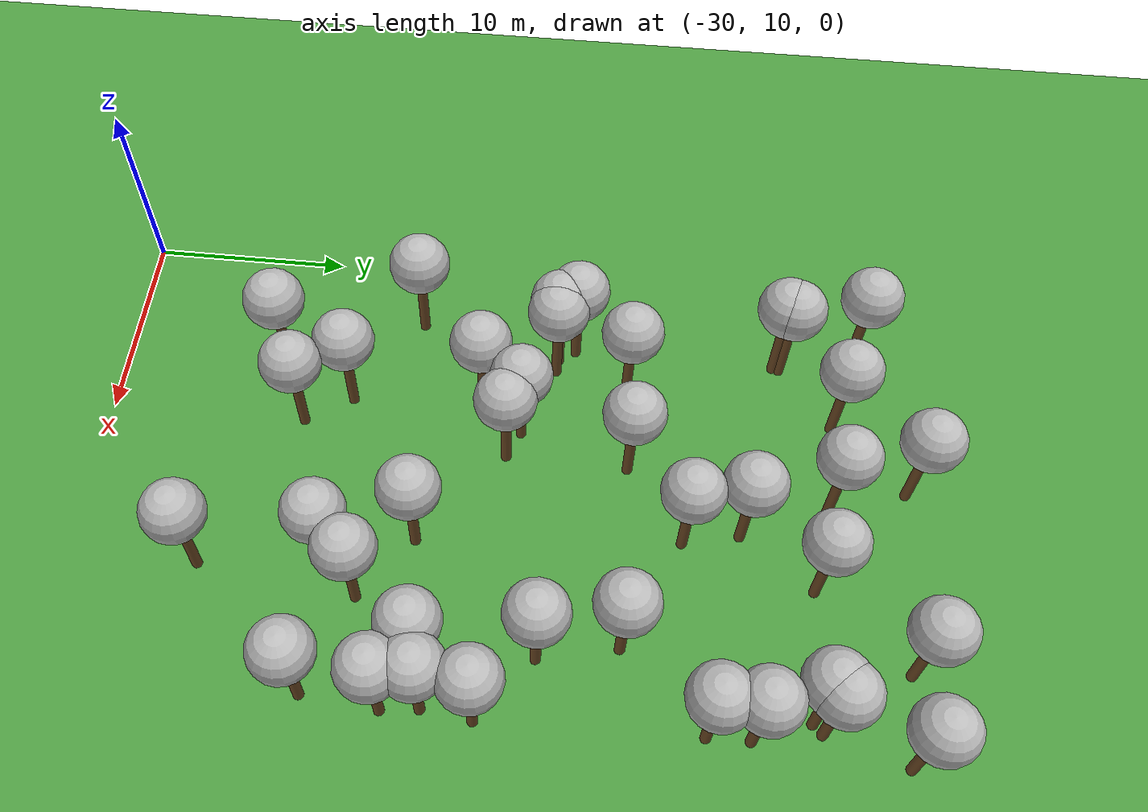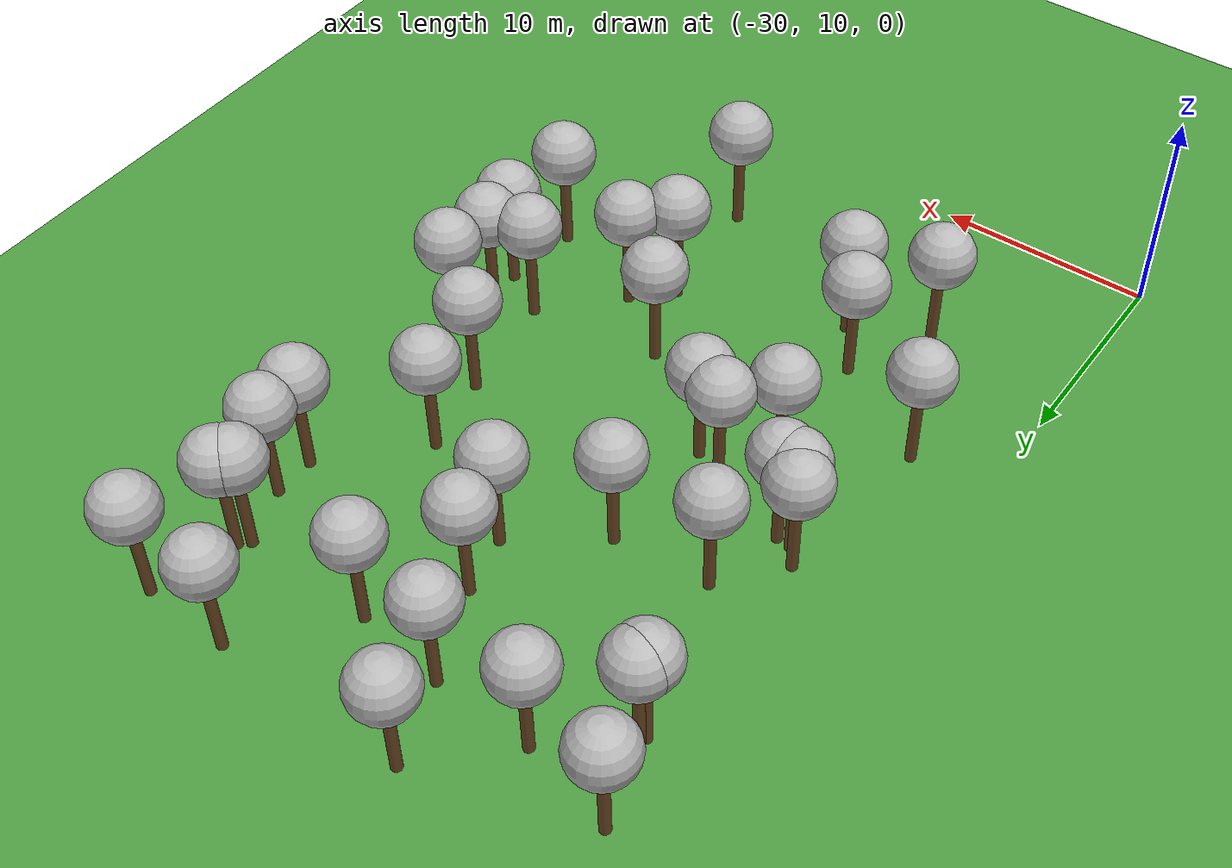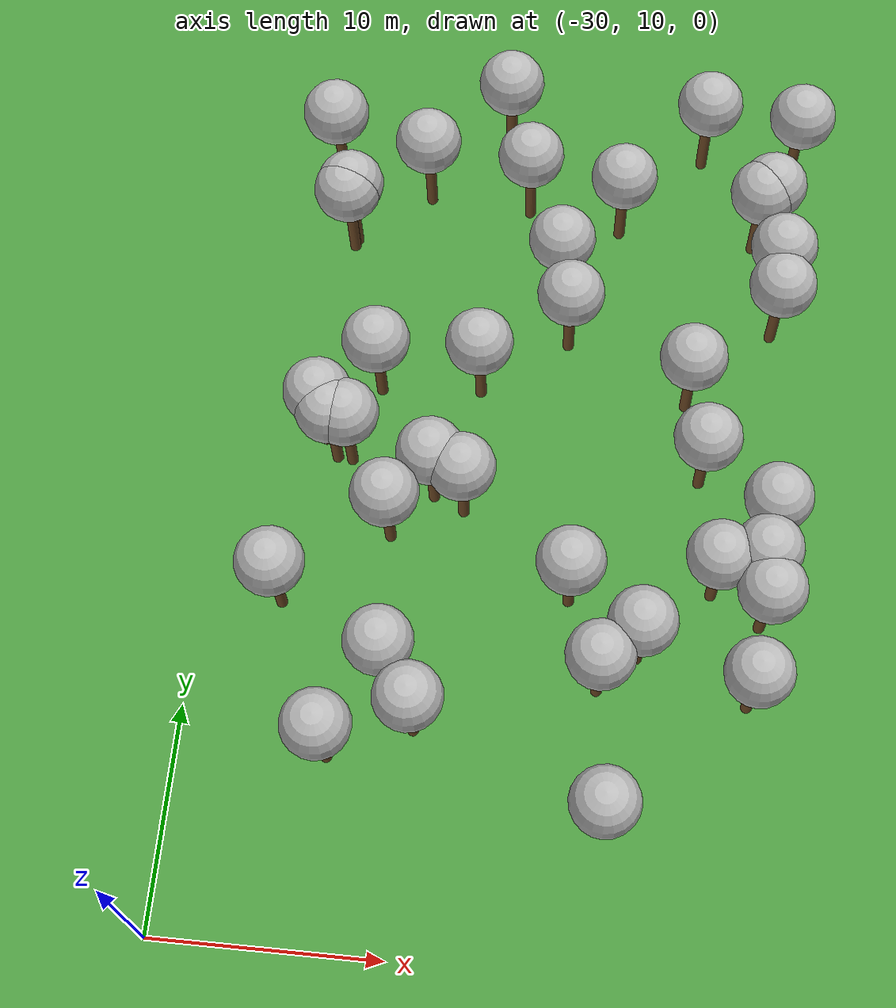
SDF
<sdf version="1.5">
 <world name="default">
  <model name="tree_simple492">
   <static>1</static>
   <link name="link">
    <pose>0 0 0.1 0 -0 0</pose>
    <collision name="collision_trunk">
     <pose>0 0 2 0 -0 0</pose>
     <geometry><cylinder><radius>0.25</radius><length>4</length></cylinder></geometry>
    </collision>
    <collision name="collision_treetop">
     <pose>0 0 5.2 0 -0 0</pose>
     <geometry><sphere><radius>1.5</radius></sphere></geometry>
    </collision>
    <visual name="trunk">
     <pose>0 0 2 0 -0 0</pose>
     <geometry><cylinder><radius>0.25</radius><length>4</length></cylinder></geometry>
     <material>
      <script>
       <uri>model://tree_simple/scripts</uri>
       <uri>model://tree_simple/materials/textures</uri>
       <name>TreeSimple/Trunk</name>
      </script>
     </material>
    </visual>
    <visual name="treetop">
     <pose>0 0 5.2 0 -0 0</pose>
     <geometry><sphere><radius>1.5</radius></sphere></geometry>
     <material>
      <script>
       <uri>model://tree_simple/scripts</uri>
       <uri>model://tree_simple/materials/textures</uri>
       <name>TreeSimple/Treetop</name>
      </script>
     </material>
    </visual>
   </link>
   <pose>-7.60604313382 27.1336498888 0 0 -0 0</pose>
  </model>
  <model name="tree_simple483">
   <static>1</static>
   <link name="link">
    <pose>0 0 0.1 0 -0 0</pose>
    <collision name="collision_trunk">
     <pose>0 0 2 0 -0 0</pose>
     <geometry><cylinder><radius>0.25</radius><length>4</length></cylinder></geometry>
    </collision>
    <collision name="collision_treetop">
     <pose>0 0 5.2 0 -0 0</pose>
     <geometry><sphere><radius>1.5</radius></sphere></geometry>
    </collision>
    <visual name="trunk">
     <pose>0 0 2 0 -0 0</pose>
     <geometry><cylinder><radius>0.25</radius><length>4</length></cylinder></geometry>
     <material>
      <script>
       <uri>model://tree_simple/scripts</uri>
       <uri>model://tree_simple/materials/textures</uri>
       <name>TreeSimple/Trunk</name>
      </script>
     </material>
    </visual>
    <visual name="treetop">
     <pose>0 0 5.2 0 -0 0</pose>
     <geometry><sphere><radius>1.5</radius></sphere></geometry>
     <material>
      <script>
       <uri>model://tree_simple/scripts</uri>
       <uri>model://tree_simple/materials/textures</uri>
       <name>TreeSimple/Treetop</name>
      </script>
     </material>
    </visual>
   </link>
   <pose>-6.65162129766 44.7613363002 0 0 -0 0</pose>
  </model>
  <model name="tree_simple479">
   <static>1</static>
   <link name="link">
    <pose>0 0 0.1 0 -0 0</pose>
    <collision name="collision_trunk">
     <pose>0 0 2 0 -0 0</pose>
     <geometry><cylinder><radius>0.25</radius><length>4</length></cylinder></geometry>
    </collision>
    <collision name="collision_treetop">
     <pose>0 0 5.2 0 -0 0</pose>
     <geometry><sphere><radius>1.5</radius></sphere></geometry>
    </collision>
    <visual name="trunk">
     <pose>0 0 2 0 -0 0</pose>
     <geometry><cylinder><radius>0.25</radius><length>4</length></cylinder></geometry>
     <material>
      <script>
       <uri>model://tree_simple/scripts</uri>
       <uri>model://tree_simple/materials/textures</uri>
       <name>TreeSimple/Trunk</name>
      </script>
     </material>
    </visual>
    <visual name="treetop">
     <pose>0 0 5.2 0 -0 0</pose>
     <geometry><sphere><radius>1.5</radius></sphere></geometry>
     <material>
      <script>
       <uri>model://tree_simple/scripts</uri>
       <uri>model://tree_simple/materials/textures</uri>
       <name>TreeSimple/Treetop</name>
      </script>
     </material>
    </visual>
   </link>
   <pose>-12.2778199556 22.3020251283 0 0 -0 0</pose>
  </model>
  <model name="tree_simple466">
   <static>1</static>
   <link name="link">
    <pose>0 0 0.1 0 -0 0</pose>
    <collision name="collision_trunk">
     <pose>0 0 2 0 -0 0</pose>
     <geometry><cylinder><radius>0.25</radius><length>4</length></cylinder></geometry>
    </collision>
    <collision name="collision_treetop">
     <pose>0 0 5.2 0 -0 0</pose>
     <geometry><sphere><radius>1.5</radius></sphere></geometry>
    </collision>
    <visual name="trunk">
     <pose>0 0 2 0 -0 0</pose>
     <geometry><cylinder><radius>0.25</radius><length>4</length></cylinder></geometry>
     <material>
      <script>
       <uri>model://tree_simple/scripts</uri>
       <uri>model://tree_simple/materials/textures</uri>
       <name>TreeSimple/Trunk</name>
      </script>
     </material>
    </visual>
    <visual name="treetop">
     <pose>0 0 5.2 0 -0 0</pose>
     <geometry><sphere><radius>1.5</radius></sphere></geometry>
     <material>
      <script>
       <uri>model://tree_simple/scripts</uri>
       <uri>model://tree_simple/materials/textures</uri>
       <name>TreeSimple/Treetop</name>
      </script>
     </material>
    </visual>
   </link>
   <pose>-5.77986608036 22.173723886 0 0 -0 0</pose>
  </model>
  <model name="tree_simple446">
   <static>1</static>
   <link name="link">
    <pose>0 0 0.1 0 -0 0</pose>
    <collision name="collision_trunk">
     <pose>0 0 2 0 -0 0</pose>
     <geometry><cylinder><radius>0.25</radius><length>4</length></cylinder></geometry>
    </collision>
    <collision name="collision_treetop">
     <pose>0 0 5.2 0 -0 0</pose>
     <geometry><sphere><radius>1.5</radius></sphere></geometry>
    </collision>
    <visual name="trunk">
     <pose>0 0 2 0 -0 0</pose>
     <geometry><cylinder><radius>0.25</radius><length>4</length></cylinder></geometry>
     <material>
      <script>
       <uri>model://tree_simple/scripts</uri>
       <uri>model://tree_simple/materials/textures</uri>
       <name>TreeSimple/Trunk</name>
      </script>
     </material>
    </visual>
    <visual name="treetop">
     <pose>0 0 5.2 0 -0 0</pose>
     <geometry><sphere><radius>1.5</radius></sphere></geometry>
     <material>
      <script>
       <uri>model://tree_simple/scripts</uri>
       <uri>model://tree_simple/materials/textures</uri>
       <name>TreeSimple/Treetop</name>
      </script>
     </material>
    </visual>
   </link>
   <pose>-14.8873591434 38.8088683427 0 0 -0 0</pose>
  </model>
  <model name="tree_simple441">
   <static>1</static>
   <link name="link">
    <pose>0 0 0.1 0 -0 0</pose>
    <collision name="collision_trunk">
     <pose>0 0 2 0 -0 0</pose>
     <geometry><cylinder><radius>0.25</radius><length>4</length></cylinder></geometry>
    </collision>
    <collision name="collision_treetop">
     <pose>0 0 5.2 0 -0 0</pose>
     <geometry><sphere><radius>1.5</radius></sphere></geometry>
    </collision>
    <visual name="trunk">
     <pose>0 0 2 0 -0 0</pose>
     <geometry><cylinder><radius>0.25</radius><length>4</length></cylinder></geometry>
     <material>
      <script>
       <uri>model://tree_simple/scripts</uri>
       <uri>model://tree_simple/materials/textures</uri>
       <name>TreeSimple/Trunk</name>
      </script>
     </material>
    </visual>
    <visual name="treetop">
     <pose>0 0 5.2 0 -0 0</pose>
     <geometry><sphere><radius>1.5</radius></sphere></geometry>
     <material>
      <script>
       <uri>model://tree_simple/scripts</uri>
       <uri>model://tree_simple/materials/textures</uri>
       <name>TreeSimple/Treetop</name>
      </script>
     </material>
    </visual>
   </link>
   <pose>-25.4258718868 33.0017159702 0 0 -0 0</pose>
  </model>
  <model name="tree_simple436">
   <static>1</static>
   <link name="link">
    <pose>0 0 0.1 0 -0 0</pose>
    <collision name="collision_trunk">
     <pose>0 0 2 0 -0 0</pose>
     <geometry><cylinder><radius>0.25</radius><length>4</length></cylinder></geometry>
    </collision>
    <collision name="collision_treetop">
     <pose>0 0 5.2 0 -0 0</pose>
     <geometry><sphere><radius>1.5</radius></sphere></geometry>
    </collision>
    <visual name="trunk">
     <pose>0 0 2 0 -0 0</pose>
     <geometry><cylinder><radius>0.25</radius><length>4</length></cylinder></geometry>
     <material>
      <script>
       <uri>model://tree_simple/scripts</uri>
       <uri>model://tree_simple/materials/textures</uri>
       <name>TreeSimple/Trunk</name>
      </script>
     </material>
    </visual>
    <visual name="treetop">
     <pose>0 0 5.2 0 -0 0</pose>
     <geometry><sphere><radius>1.5</radius></sphere></geometry>
     <material>
      <script>
       <uri>model://tree_simple/scripts</uri>
       <uri>model://tree_simple/materials/textures</uri>
       <name>TreeSimple/Treetop</name>
      </script>
     </material>
    </visual>
   </link>
   <pose>-12.9773602363 44.9895309953 0 0 -0 0</pose>
  </model>
  <model name="tree_simple425">
   <static>1</static>
   <link name="link">
    <pose>0 0 0.1 0 -0 0</pose>
    <collision name="collision_trunk">
     <pose>0 0 2 0 -0 0</pose>
     <geometry><cylinder><radius>0.25</radius><length>4</length></cylinder></geometry>
    </collision>
    <collision name="collision_treetop">
     <pose>0 0 5.2 0 -0 0</pose>
     <geometry><sphere><radius>1.5</radius></sphere></geometry>
    </collision>
    <visual name="trunk">
     <pose>0 0 2 0 -0 0</pose>
     <geometry><cylinder><radius>0.25</radius><length>4</length></cylinder></geometry>
     <material>
      <script>
       <uri>model://tree_simple/scripts</uri>
       <uri>model://tree_simple/materials/textures</uri>
       <name>TreeSimple/Trunk</name>
      </script>
     </material>
    </visual>
    <visual name="treetop">
     <pose>0 0 5.2 0 -0 0</pose>
     <geometry><sphere><radius>1.5</radius></sphere></geometry>
     <material>
      <script>
       <uri>model://tree_simple/scripts</uri>
       <uri>model://tree_simple/materials/textures</uri>
       <name>TreeSimple/Treetop</name>
      </script>
     </material>
    </visual>
   </link>
   <pose>-9.294152574 36.1907172759 0 0 -0 0</pose>
  </model>
  <model name="tree_simple409">
   <static>1</static>
   <link name="link">
    <pose>0 0 0.1 0 -0 0</pose>
    <collision name="collision_trunk">
     <pose>0 0 2 0 -0 0</pose>
     <geometry><cylinder><radius>0.25</radius><length>4</length></cylinder></geometry>
    </collision>
    <collision name="collision_treetop">
     <pose>0 0 5.2 0 -0 0</pose>
     <geometry><sphere><radius>1.5</radius></sphere></geometry>
    </collision>
    <visual name="trunk">
     <pose>0 0 2 0 -0 0</pose>
     <geometry><cylinder><radius>0.25</radius><length>4</length></cylinder></geometry>
     <material>
      <script>
       <uri>model://tree_simple/scripts</uri>
       <uri>model://tree_simple/materials/textures</uri>
       <name>TreeSimple/Trunk</name>
      </script>
     </material>
    </visual>
    <visual name="treetop">
     <pose>0 0 5.2 0 -0 0</pose>
     <geometry><sphere><radius>1.5</radius></sphere></geometry>
     <material>
      <script>
       <uri>model://tree_simple/scripts</uri>
       <uri>model://tree_simple/materials/textures</uri>
       <name>TreeSimple/Treetop</name>
      </script>
     </material>
    </visual>
   </link>
   <pose>-23.2045481925 35.7189479207 0 0 -0 0</pose>
  </model>
  <model name="tree_simple398">
   <static>1</static>
   <link name="link">
    <pose>0 0 0.1 0 -0 0</pose>
    <collision name="collision_trunk">
     <pose>0 0 2 0 -0 0</pose>
     <geometry><cylinder><radius>0.25</radius><length>4</length></cylinder></geometry>
    </collision>
    <collision name="collision_treetop">
     <pose>0 0 5.2 0 -0 0</pose>
     <geometry><sphere><radius>1.5</radius></sphere></geometry>
    </collision>
    <visual name="trunk">
     <pose>0 0 2 0 -0 0</pose>
     <geometry><cylinder><radius>0.25</radius><length>4</length></cylinder></geometry>
     <material>
      <script>
       <uri>model://tree_simple/scripts</uri>
       <uri>model://tree_simple/materials/textures</uri>
       <name>TreeSimple/Trunk</name>
      </script>
     </material>
    </visual>
    <visual name="treetop">
     <pose>0 0 5.2 0 -0 0</pose>
     <geometry><sphere><radius>1.5</radius></sphere></geometry>
     <material>
      <script>
       <uri>model://tree_simple/scripts</uri>
       <uri>model://tree_simple/materials/textures</uri>
       <name>TreeSimple/Treetop</name>
      </script>
     </material>
    </visual>
   </link>
   <pose>-5.63129043723 27.5985943182 0 0 -0 0</pose>
  </model>
  <model name="tree_simple359">
   <static>1</static>
   <link name="link">
    <pose>0 0 0.1 0 -0 0</pose>
    <collision name="collision_trunk">
     <pose>0 0 2 0 -0 0</pose>
     <geometry><cylinder><radius>0.25</radius><length>4</length></cylinder></geometry>
    </collision>
    <collision name="collision_treetop">
     <pose>0 0 5.2 0 -0 0</pose>
     <geometry><sphere><radius>1.5</radius></sphere></geometry>
    </collision>
    <visual name="trunk">
     <pose>0 0 2 0 -0 0</pose>
     <geometry><cylinder><radius>0.25</radius><length>4</length></cylinder></geometry>
     <material>
      <script>
       <uri>model://tree_simple/scripts</uri>
       <uri>model://tree_simple/materials/textures</uri>
       <name>TreeSimple/Trunk</name>
      </script>
     </material>
    </visual>
    <visual name="treetop">
     <pose>0 0 5.2 0 -0 0</pose>
     <geometry><sphere><radius>1.5</radius></sphere></geometry>
     <material>
      <script>
       <uri>model://tree_simple/scripts</uri>
       <uri>model://tree_simple/materials/textures</uri>
       <name>TreeSimple/Treetop</name>
      </script>
     </material>
    </visual>
   </link>
   <pose>-20.2372130322 30.6626507403 0 0 -0 0</pose>
  </model>
  <model name="tree_simple353">
   <static>1</static>
   <link name="link">
    <pose>0 0 0.1 0 -0 0</pose>
    <collision name="collision_trunk">
     <pose>0 0 2 0 -0 0</pose>
     <geometry><cylinder><radius>0.25</radius><length>4</length></cylinder></geometry>
    </collision>
    <collision name="collision_treetop">
     <pose>0 0 5.2 0 -0 0</pose>
     <geometry><sphere><radius>1.5</radius></sphere></geometry>
    </collision>
    <visual name="trunk">
     <pose>0 0 2 0 -0 0</pose>
     <geometry><cylinder><radius>0.25</radius><length>4</length></cylinder></geometry>
     <material>
      <script>
       <uri>model://tree_simple/scripts</uri>
       <uri>model://tree_simple/materials/textures</uri>
       <name>TreeSimple/Trunk</name>
      </script>
     </material>
    </visual>
    <visual name="treetop">
     <pose>0 0 5.2 0 -0 0</pose>
     <geometry><sphere><radius>1.5</radius></sphere></geometry>
     <material>
      <script>
       <uri>model://tree_simple/scripts</uri>
       <uri>model://tree_simple/materials/textures</uri>
       <name>TreeSimple/Treetop</name>
      </script>
     </material>
    </visual>
   </link>
   <pose>-8.45318639894 32.4449291469 0 0 -0 0</pose>
  </model>
  <model name="tree_simple343">
   <static>1</static>
   <link name="link">
    <pose>0 0 0.1 0 -0 0</pose>
    <collision name="collision_trunk">
     <pose>0 0 2 0 -0 0</pose>
     <geometry><cylinder><radius>0.25</radius><length>4</length></cylinder></geometry>
    </collision>
    <collision name="collision_treetop">
     <pose>0 0 5.2 0 -0 0</pose>
     <geometry><sphere><radius>1.5</radius></sphere></geometry>
    </collision>
    <visual name="trunk">
     <pose>0 0 2 0 -0 0</pose>
     <geometry><cylinder><radius>0.25</radius><length>4</length></cylinder></geometry>
     <material>
      <script>
       <uri>model://tree_simple/scripts</uri>
       <uri>model://tree_simple/materials/textures</uri>
       <name>TreeSimple/Trunk</name>
      </script>
     </material>
    </visual>
    <visual name="treetop">
     <pose>0 0 5.2 0 -0 0</pose>
     <geometry><sphere><radius>1.5</radius></sphere></geometry>
     <material>
      <script>
       <uri>model://tree_simple/scripts</uri>
       <uri>model://tree_simple/materials/textures</uri>
       <name>TreeSimple/Treetop</name>
      </script>
     </material>
    </visual>
   </link>
   <pose>-17.2958932822 45.7138384605 0 0 -0 0</pose>
  </model>
  <model name="tree_simple342">
   <static>1</static>
   <link name="link">
    <pose>0 0 0.1 0 -0 0</pose>
    <collision name="collision_trunk">
     <pose>0 0 2 0 -0 0</pose>
     <geometry><cylinder><radius>0.25</radius><length>4</length></cylinder></geometry>
    </collision>
    <collision name="collision_treetop">
     <pose>0 0 5.2 0 -0 0</pose>
     <geometry><sphere><radius>1.5</radius></sphere></geometry>
    </collision>
    <visual name="trunk">
     <pose>0 0 2 0 -0 0</pose>
     <geometry><cylinder><radius>0.25</radius><length>4</length></cylinder></geometry>
     <material>
      <script>
       <uri>model://tree_simple/scripts</uri>
       <uri>model://tree_simple/materials/textures</uri>
       <name>TreeSimple/Trunk</name>
      </script>
     </material>
    </visual>
    <visual name="treetop">
     <pose>0 0 5.2 0 -0 0</pose>
     <geometry><sphere><radius>1.5</radius></sphere></geometry>
     <material>
      <script>
       <uri>model://tree_simple/scripts</uri>
       <uri>model://tree_simple/materials/textures</uri>
       <name>TreeSimple/Treetop</name>
      </script>
     </material>
    </visual>
   </link>
   <pose>-22.0369501139 46.0033918911 0 0 -0 0</pose>
  </model>
  <model name="tree_simple310">
   <static>1</static>
   <link name="link">
    <pose>0 0 0.1 0 -0 0</pose>
    <collision name="collision_trunk">
     <pose>0 0 2 0 -0 0</pose>
     <geometry><cylinder><radius>0.25</radius><length>4</length></cylinder></geometry>
    </collision>
    <collision name="collision_treetop">
     <pose>0 0 5.2 0 -0 0</pose>
     <geometry><sphere><radius>1.5</radius></sphere></geometry>
    </collision>
    <visual name="trunk">
     <pose>0 0 2 0 -0 0</pose>
     <geometry><cylinder><radius>0.25</radius><length>4</length></cylinder></geometry>
     <material>
      <script>
       <uri>model://tree_simple/scripts</uri>
       <uri>model://tree_simple/materials/textures</uri>
       <name>TreeSimple/Trunk</name>
      </script>
     </material>
    </visual>
    <visual name="treetop">
     <pose>0 0 5.2 0 -0 0</pose>
     <geometry><sphere><radius>1.5</radius></sphere></geometry>
     <material>
      <script>
       <uri>model://tree_simple/scripts</uri>
       <uri>model://tree_simple/materials/textures</uri>
       <name>TreeSimple/Treetop</name>
      </script>
     </material>
    </visual>
   </link>
   <pose>-24.1249967054 32.1060106323 0 0 -0 0</pose>
  </model>
  <model name="tree_simple307">
   <static>1</static>
   <link name="link">
    <pose>0 0 0.1 0 -0 0</pose>
    <collision name="collision_trunk">
     <pose>0 0 2 0 -0 0</pose>
     <geometry><cylinder><radius>0.25</radius><length>4</length></cylinder></geometry>
    </collision>
    <collision name="collision_treetop">
     <pose>0 0 5.2 0 -0 0</pose>
     <geometry><sphere><radius>1.5</radius></sphere></geometry>
    </collision>
    <visual name="trunk">
     <pose>0 0 2 0 -0 0</pose>
     <geometry><cylinder><radius>0.25</radius><length>4</length></cylinder></geometry>
     <material>
      <script>
       <uri>model://tree_simple/scripts</uri>
       <uri>model://tree_simple/materials/textures</uri>
       <name>TreeSimple/Trunk</name>
      </script>
     </material>
    </visual>
    <visual name="treetop">
     <pose>0 0 5.2 0 -0 0</pose>
     <geometry><sphere><radius>1.5</radius></sphere></geometry>
     <material>
      <script>
       <uri>model://tree_simple/scripts</uri>
       <uri>model://tree_simple/materials/textures</uri>
       <name>TreeSimple/Treetop</name>
      </script>
     </material>
    </visual>
   </link>
   <pose>-25.3992623196 43.1282745175 0 0 -0 0</pose>
  </model>
  <model name="tree_simple271">
   <static>1</static>
   <link name="link">
    <pose>0 0 0.1 0 -0 0</pose>
    <collision name="collision_trunk">
     <pose>0 0 2 0 -0 0</pose>
     <geometry><cylinder><radius>0.25</radius><length>4</length></cylinder></geometry>
    </collision>
    <collision name="collision_treetop">
     <pose>0 0 5.2 0 -0 0</pose>
     <geometry><sphere><radius>1.5</radius></sphere></geometry>
    </collision>
    <visual name="trunk">
     <pose>0 0 2 0 -0 0</pose>
     <geometry><cylinder><radius>0.25</radius><length>4</length></cylinder></geometry>
     <material>
      <script>
       <uri>model://tree_simple/scripts</uri>
       <uri>model://tree_simple/materials/textures</uri>
       <name>TreeSimple/Trunk</name>
      </script>
     </material>
    </visual>
    <visual name="treetop">
     <pose>0 0 5.2 0 -0 0</pose>
     <geometry><sphere><radius>1.5</radius></sphere></geometry>
     <material>
      <script>
       <uri>model://tree_simple/scripts</uri>
       <uri>model://tree_simple/materials/textures</uri>
       <name>TreeSimple/Treetop</name>
      </script>
     </material>
    </visual>
   </link>
   <pose>-18.5426783436 49.4999190652 0 0 -0 0</pose>
  </model>
  <model name="tree_simple251">
   <static>1</static>
   <link name="link">
    <pose>0 0 0.1 0 -0 0</pose>
    <collision name="collision_trunk">
     <pose>0 0 2 0 -0 0</pose>
     <geometry><cylinder><radius>0.25</radius><length>4</length></cylinder></geometry>
    </collision>
    <collision name="collision_treetop">
     <pose>0 0 5.2 0 -0 0</pose>
     <geometry><sphere><radius>1.5</radius></sphere></geometry>
    </collision>
    <visual name="trunk">
     <pose>0 0 2 0 -0 0</pose>
     <geometry><cylinder><radius>0.25</radius><length>4</length></cylinder></geometry>
     <material>
      <script>
       <uri>model://tree_simple/scripts</uri>
       <uri>model://tree_simple/materials/textures</uri>
       <name>TreeSimple/Trunk</name>
      </script>
     </material>
    </visual>
    <visual name="treetop">
     <pose>0 0 5.2 0 -0 0</pose>
     <geometry><sphere><radius>1.5</radius></sphere></geometry>
     <material>
      <script>
       <uri>model://tree_simple/scripts</uri>
       <uri>model://tree_simple/materials/textures</uri>
       <name>TreeSimple/Treetop</name>
      </script>
     </material>
    </visual>
   </link>
   <pose>-19.9479400909 19.7976665809 0 0 -0 0</pose>
  </model>
  <model name="tree_simple248">
   <static>1</static>
   <link name="link">
    <pose>0 0 0.1 0 -0 0</pose>
    <collision name="collision_trunk">
     <pose>0 0 2 0 -0 0</pose>
     <geometry><cylinder><radius>0.25</radius><length>4</length></cylinder></geometry>
    </collision>
    <collision name="collision_treetop">
     <pose>0 0 5.2 0 -0 0</pose>
     <geometry><sphere><radius>1.5</radius></sphere></geometry>
    </collision>
    <visual name="trunk">
     <pose>0 0 2 0 -0 0</pose>
     <geometry><cylinder><radius>0.25</radius><length>4</length></cylinder></geometry>
     <material>
      <script>
       <uri>model://tree_simple/scripts</uri>
       <uri>model://tree_simple/materials/textures</uri>
       <name>TreeSimple/Trunk</name>
      </script>
     </material>
    </visual>
    <visual name="treetop">
     <pose>0 0 5.2 0 -0 0</pose>
     <geometry><sphere><radius>1.5</radius></sphere></geometry>
     <material>
      <script>
       <uri>model://tree_simple/scripts</uri>
       <uri>model://tree_simple/materials/textures</uri>
       <name>TreeSimple/Treetop</name>
      </script>
     </material>
    </visual>
   </link>
   <pose>-9.31615496508 49.2286778513 0 0 -0 0</pose>
  </model>
  <model name="tree_simple232">
   <static>1</static>
   <link name="link">
    <pose>0 0 0.1 0 -0 0</pose>
    <collision name="collision_trunk">
     <pose>0 0 2 0 -0 0</pose>
     <geometry><cylinder><radius>0.25</radius><length>4</length></cylinder></geometry>
    </collision>
    <collision name="collision_treetop">
     <pose>0 0 5.2 0 -0 0</pose>
     <geometry><sphere><radius>1.5</radius></sphere></geometry>
    </collision>
    <visual name="trunk">
     <pose>0 0 2 0 -0 0</pose>
     <geometry><cylinder><radius>0.25</radius><length>4</length></cylinder></geometry>
     <material>
      <script>
       <uri>model://tree_simple/scripts</uri>
       <uri>model://tree_simple/materials/textures</uri>
       <name>TreeSimple/Trunk</name>
      </script>
     </material>
    </visual>
    <visual name="treetop">
     <pose>0 0 5.2 0 -0 0</pose>
     <geometry><sphere><radius>1.5</radius></sphere></geometry>
     <material>
      <script>
       <uri>model://tree_simple/scripts</uri>
       <uri>model://tree_simple/materials/textures</uri>
       <name>TreeSimple/Treetop</name>
      </script>
     </material>
    </visual>
   </link>
   <pose>-11.6357803634 16.236207717 0 0 -0 0</pose>
  </model>
  <model name="tree_simple224">
   <static>1</static>
   <link name="link">
    <pose>0 0 0.1 0 -0 0</pose>
    <collision name="collision_trunk">
     <pose>0 0 2 0 -0 0</pose>
     <geometry><cylinder><radius>0.25</radius><length>4</length></cylinder></geometry>
    </collision>
    <collision name="collision_treetop">
     <pose>0 0 5.2 0 -0 0</pose>
     <geometry><sphere><radius>1.5</radius></sphere></geometry>
    </collision>
    <visual name="trunk">
     <pose>0 0 2 0 -0 0</pose>
     <geometry><cylinder><radius>0.25</radius><length>4</length></cylinder></geometry>
     <material>
      <script>
       <uri>model://tree_simple/scripts</uri>
       <uri>model://tree_simple/materials/textures</uri>
       <name>TreeSimple/Trunk</name>
      </script>
     </material>
    </visual>
    <visual name="treetop">
     <pose>0 0 5.2 0 -0 0</pose>
     <geometry><sphere><radius>1.5</radius></sphere></geometry>
     <material>
      <script>
       <uri>model://tree_simple/scripts</uri>
       <uri>model://tree_simple/materials/textures</uri>
       <name>TreeSimple/Treetop</name>
      </script>
     </material>
    </visual>
   </link>
   <pose>-25.303745436 43.465040084 0 0 -0 0</pose>
  </model>
  <model name="tree_simple213">
   <static>1</static>
   <link name="link">
    <pose>0 0 0.1 0 -0 0</pose>
    <collision name="collision_trunk">
     <pose>0 0 2 0 -0 0</pose>
     <geometry><cylinder><radius>0.25</radius><length>4</length></cylinder></geometry>
    </collision>
    <collision name="collision_treetop">
     <pose>0 0 5.2 0 -0 0</pose>
     <geometry><sphere><radius>1.5</radius></sphere></geometry>
    </collision>
    <visual name="trunk">
     <pose>0 0 2 0 -0 0</pose>
     <geometry><cylinder><radius>0.25</radius><length>4</length></cylinder></geometry>
     <material>
      <script>
       <uri>model://tree_simple/scripts</uri>
       <uri>model://tree_simple/materials/textures</uri>
       <name>TreeSimple/Trunk</name>
      </script>
     </material>
    </visual>
    <visual name="treetop">
     <pose>0 0 5.2 0 -0 0</pose>
     <geometry><sphere><radius>1.5</radius></sphere></geometry>
     <material>
      <script>
       <uri>model://tree_simple/scripts</uri>
       <uri>model://tree_simple/materials/textures</uri>
       <name>TreeSimple/Treetop</name>
      </script>
     </material>
    </visual>
   </link>
   <pose>-6.21217405129 45.1783482454 0 0 -0 0</pose>
  </model>
  <model name="tree_simple183">
   <static>1</static>
   <link name="link">
    <pose>0 0 0.1 0 -0 0</pose>
    <collision name="collision_trunk">
     <pose>0 0 2 0 -0 0</pose>
     <geometry><cylinder><radius>0.25</radius><length>4</length></cylinder></geometry>
    </collision>
    <collision name="collision_treetop">
     <pose>0 0 5.2 0 -0 0</pose>
     <geometry><sphere><radius>1.5</radius></sphere></geometry>
    </collision>
    <visual name="trunk">
     <pose>0 0 2 0 -0 0</pose>
     <geometry><cylinder><radius>0.25</radius><length>4</length></cylinder></geometry>
     <material>
      <script>
       <uri>model://tree_simple/scripts</uri>
       <uri>model://tree_simple/materials/textures</uri>
       <name>TreeSimple/Trunk</name>
      </script>
     </material>
    </visual>
    <visual name="treetop">
     <pose>0 0 5.2 0 -0 0</pose>
     <geometry><sphere><radius>1.5</radius></sphere></geometry>
     <material>
      <script>
       <uri>model://tree_simple/scripts</uri>
       <uri>model://tree_simple/materials/textures</uri>
       <name>TreeSimple/Treetop</name>
      </script>
     </material>
    </visual>
   </link>
   <pose>-24.8051767245 32.1734283562 0 0 -0 0</pose>
  </model>
  <model name="tree_simple174">
   <static>1</static>
   <link name="link">
    <pose>0 0 0.1 0 -0 0</pose>
    <collision name="collision_trunk">
     <pose>0 0 2 0 -0 0</pose>
     <geometry><cylinder><radius>0.25</radius><length>4</length></cylinder></geometry>
    </collision>
    <collision name="collision_treetop">
     <pose>0 0 5.2 0 -0 0</pose>
     <geometry><sphere><radius>1.5</radius></sphere></geometry>
    </collision>
    <visual name="trunk">
     <pose>0 0 2 0 -0 0</pose>
     <geometry><cylinder><radius>0.25</radius><length>4</length></cylinder></geometry>
     <material>
      <script>
       <uri>model://tree_simple/scripts</uri>
       <uri>model://tree_simple/materials/textures</uri>
       <name>TreeSimple/Trunk</name>
      </script>
     </material>
    </visual>
    <visual name="treetop">
     <pose>0 0 5.2 0 -0 0</pose>
     <geometry><sphere><radius>1.5</radius></sphere></geometry>
     <material>
      <script>
       <uri>model://tree_simple/scripts</uri>
       <uri>model://tree_simple/materials/textures</uri>
       <name>TreeSimple/Treetop</name>
      </script>
     </material>
    </visual>
   </link>
   <pose>-26.363349587 25.0273342245 0 0 -0 0</pose>
  </model>
  <model name="tree_simple161">
   <static>1</static>
   <link name="link">
    <pose>0 0 0.1 0 -0 0</pose>
    <collision name="collision_trunk">
     <pose>0 0 2 0 -0 0</pose>
     <geometry><cylinder><radius>0.25</radius><length>4</length></cylinder></geometry>
    </collision>
    <collision name="collision_treetop">
     <pose>0 0 5.2 0 -0 0</pose>
     <geometry><sphere><radius>1.5</radius></sphere></geometry>
    </collision>
    <visual name="trunk">
     <pose>0 0 2 0 -0 0</pose>
     <geometry><cylinder><radius>0.25</radius><length>4</length></cylinder></geometry>
     <material>
      <script>
       <uri>model://tree_simple/scripts</uri>
       <uri>model://tree_simple/materials/textures</uri>
       <name>TreeSimple/Trunk</name>
      </script>
     </material>
    </visual>
    <visual name="treetop">
     <pose>0 0 5.2 0 -0 0</pose>
     <geometry><sphere><radius>1.5</radius></sphere></geometry>
     <material>
      <script>
       <uri>model://tree_simple/scripts</uri>
       <uri>model://tree_simple/materials/textures</uri>
       <name>TreeSimple/Treetop</name>
      </script>
     </material>
    </visual>
   </link>
   <pose>-5.06082538739 48.9463602033 0 0 -0 0</pose>
  </model>
  <model name="tree_simple134">
   <static>1</static>
   <link name="link">
    <pose>0 0 0.1 0 -0 0</pose>
    <collision name="collision_trunk">
     <pose>0 0 2 0 -0 0</pose>
     <geometry><cylinder><radius>0.25</radius><length>4</length></cylinder></geometry>
    </collision>
    <collision name="collision_treetop">
     <pose>0 0 5.2 0 -0 0</pose>
     <geometry><sphere><radius>1.5</radius></sphere></geometry>
    </collision>
    <visual name="trunk">
     <pose>0 0 2 0 -0 0</pose>
     <geometry><cylinder><radius>0.25</radius><length>4</length></cylinder></geometry>
     <material>
      <script>
       <uri>model://tree_simple/scripts</uri>
       <uri>model://tree_simple/materials/textures</uri>
       <name>TreeSimple/Trunk</name>
      </script>
     </material>
    </visual>
    <visual name="treetop">
     <pose>0 0 5.2 0 -0 0</pose>
     <geometry><sphere><radius>1.5</radius></sphere></geometry>
     <material>
      <script>
       <uri>model://tree_simple/scripts</uri>
       <uri>model://tree_simple/materials/textures</uri>
       <name>TreeSimple/Treetop</name>
      </script>
     </material>
    </visual>
   </link>
   <pose>-15.5112177362 41.52540577 0 0 -0 0</pose>
  </model>
  <model name="tree_simple116">
   <static>1</static>
   <link name="link">
    <pose>0 0 0.1 0 -0 0</pose>
    <collision name="collision_trunk">
     <pose>0 0 2 0 -0 0</pose>
     <geometry><cylinder><radius>0.25</radius><length>4</length></cylinder></geometry>
    </collision>
    <collision name="collision_treetop">
     <pose>0 0 5.2 0 -0 0</pose>
     <geometry><sphere><radius>1.5</radius></sphere></geometry>
    </collision>
    <visual name="trunk">
     <pose>0 0 2 0 -0 0</pose>
     <geometry><cylinder><radius>0.25</radius><length>4</length></cylinder></geometry>
     <material>
      <script>
       <uri>model://tree_simple/scripts</uri>
       <uri>model://tree_simple/materials/textures</uri>
       <name>TreeSimple/Trunk</name>
      </script>
     </material>
    </visual>
    <visual name="treetop">
     <pose>0 0 5.2 0 -0 0</pose>
     <geometry><sphere><radius>1.5</radius></sphere></geometry>
     <material>
      <script>
       <uri>model://tree_simple/scripts</uri>
       <uri>model://tree_simple/materials/textures</uri>
       <name>TreeSimple/Treetop</name>
      </script>
     </material>
    </visual>
   </link>
   <pose>-18.6791358841 36.0330135093 0 0 -0 0</pose>
  </model>
  <model name="tree_simple111">
   <static>1</static>
   <link name="link">
    <pose>0 0 0.1 0 -0 0</pose>
    <collision name="collision_trunk">
     <pose>0 0 2 0 -0 0</pose>
     <geometry><cylinder><radius>0.25</radius><length>4</length></cylinder></geometry>
    </collision>
    <collision name="collision_treetop">
     <pose>0 0 5.2 0 -0 0</pose>
     <geometry><sphere><radius>1.5</radius></sphere></geometry>
    </collision>
    <visual name="trunk">
     <pose>0 0 2 0 -0 0</pose>
     <geometry><cylinder><radius>0.25</radius><length>4</length></cylinder></geometry>
     <material>
      <script>
       <uri>model://tree_simple/scripts</uri>
       <uri>model://tree_simple/materials/textures</uri>
       <name>TreeSimple/Trunk</name>
      </script>
     </material>
    </visual>
    <visual name="treetop">
     <pose>0 0 5.2 0 -0 0</pose>
     <geometry><sphere><radius>1.5</radius></sphere></geometry>
     <material>
      <script>
       <uri>model://tree_simple/scripts</uri>
       <uri>model://tree_simple/materials/textures</uri>
       <name>TreeSimple/Treetop</name>
      </script>
     </material>
    </visual>
   </link>
   <pose>-26.4353630298 47.1515170398 0 0 -0 0</pose>
  </model>
  <model name="tree_simple110">
   <static>1</static>
   <link name="link">
    <pose>0 0 0.1 0 -0 0</pose>
    <collision name="collision_trunk">
     <pose>0 0 2 0 -0 0</pose>
     <geometry><cylinder><radius>0.25</radius><length>4</length></cylinder></geometry>
    </collision>
    <collision name="collision_treetop">
     <pose>0 0 5.2 0 -0 0</pose>
     <geometry><sphere><radius>1.5</radius></sphere></geometry>
    </collision>
    <visual name="trunk">
     <pose>0 0 2 0 -0 0</pose>
     <geometry><cylinder><radius>0.25</radius><length>4</length></cylinder></geometry>
     <material>
      <script>
       <uri>model://tree_simple/scripts</uri>
       <uri>model://tree_simple/materials/textures</uri>
       <name>TreeSimple/Trunk</name>
      </script>
     </material>
    </visual>
    <visual name="treetop">
     <pose>0 0 5.2 0 -0 0</pose>
     <geometry><sphere><radius>1.5</radius></sphere></geometry>
     <material>
      <script>
       <uri>model://tree_simple/scripts</uri>
       <uri>model://tree_simple/materials/textures</uri>
       <name>TreeSimple/Treetop</name>
      </script>
     </material>
    </visual>
   </link>
   <pose>-5.41034027226 25.8326134986 0 0 -0 0</pose>
  </model>
  <model name="tree_simple104">
   <static>1</static>
   <link name="link">
    <pose>0 0 0.1 0 -0 0</pose>
    <collision name="collision_trunk">
     <pose>0 0 2 0 -0 0</pose>
     <geometry><cylinder><radius>0.25</radius><length>4</length></cylinder></geometry>
    </collision>
    <collision name="collision_treetop">
     <pose>0 0 5.2 0 -0 0</pose>
     <geometry><sphere><radius>1.5</radius></sphere></geometry>
    </collision>
    <visual name="trunk">
     <pose>0 0 2 0 -0 0</pose>
     <geometry><cylinder><radius>0.25</radius><length>4</length></cylinder></geometry>
     <material>
      <script>
       <uri>model://tree_simple/scripts</uri>
       <uri>model://tree_simple/materials/textures</uri>
       <name>TreeSimple/Trunk</name>
      </script>
     </material>
    </visual>
    <visual name="treetop">
     <pose>0 0 5.2 0 -0 0</pose>
     <geometry><sphere><radius>1.5</radius></sphere></geometry>
     <material>
      <script>
       <uri>model://tree_simple/scripts</uri>
       <uri>model://tree_simple/materials/textures</uri>
       <name>TreeSimple/Treetop</name>
      </script>
     </material>
    </visual>
   </link>
   <pose>-21.9670509501 28.5770993943 0 0 -0 0</pose>
  </model>
  <model name="tree_simple103">
   <static>1</static>
   <link name="link">
    <pose>0 0 0.1 0 -0 0</pose>
    <collision name="collision_trunk">
     <pose>0 0 2 0 -0 0</pose>
     <geometry><cylinder><radius>0.25</radius><length>4</length></cylinder></geometry>
    </collision>
    <collision name="collision_treetop">
     <pose>0 0 5.2 0 -0 0</pose>
     <geometry><sphere><radius>1.5</radius></sphere></geometry>
    </collision>
    <visual name="trunk">
     <pose>0 0 2 0 -0 0</pose>
     <geometry><cylinder><radius>0.25</radius><length>4</length></cylinder></geometry>
     <material>
      <script>
       <uri>model://tree_simple/scripts</uri>
       <uri>model://tree_simple/materials/textures</uri>
       <name>TreeSimple/Trunk</name>
      </script>
     </material>
    </visual>
    <visual name="treetop">
     <pose>0 0 5.2 0 -0 0</pose>
     <geometry><sphere><radius>1.5</radius></sphere></geometry>
     <material>
      <script>
       <uri>model://tree_simple/scripts</uri>
       <uri>model://tree_simple/materials/textures</uri>
       <name>TreeSimple/Treetop</name>
      </script>
     </material>
    </visual>
   </link>
   <pose>-23.5128318618 18.2920552876 0 0 -0 0</pose>
  </model>
  <model name="tree_simple92">
   <static>1</static>
   <link name="link">
    <pose>0 0 0.1 0 -0 0</pose>
    <collision name="collision_trunk">
     <pose>0 0 2 0 -0 0</pose>
     <geometry><cylinder><radius>0.25</radius><length>4</length></cylinder></geometry>
    </collision>
    <collision name="collision_treetop">
     <pose>0 0 5.2 0 -0 0</pose>
     <geometry><sphere><radius>1.5</radius></sphere></geometry>
    </collision>
    <visual name="trunk">
     <pose>0 0 2 0 -0 0</pose>
     <geometry><cylinder><radius>0.25</radius><length>4</length></cylinder></geometry>
     <material>
      <script>
       <uri>model://tree_simple/scripts</uri>
       <uri>model://tree_simple/materials/textures</uri>
       <name>TreeSimple/Trunk</name>
      </script>
     </material>
    </visual>
    <visual name="treetop">
     <pose>0 0 5.2 0 -0 0</pose>
     <geometry><sphere><radius>1.5</radius></sphere></geometry>
     <material>
      <script>
       <uri>model://tree_simple/scripts</uri>
       <uri>model://tree_simple/materials/textures</uri>
       <name>TreeSimple/Treetop</name>
      </script>
     </material>
    </visual>
   </link>
   <pose>-5.60936243571 42.0879357929 0 0 -0 0</pose>
  </model>
  <model name="tree_simple79">
   <static>1</static>
   <link name="link">
    <pose>0 0 0.1 0 -0 0</pose>
    <collision name="collision_trunk">
     <pose>0 0 2 0 -0 0</pose>
     <geometry><cylinder><radius>0.25</radius><length>4</length></cylinder></geometry>
    </collision>
    <collision name="collision_treetop">
     <pose>0 0 5.2 0 -0 0</pose>
     <geometry><sphere><radius>1.5</radius></sphere></geometry>
    </collision>
    <visual name="trunk">
     <pose>0 0 2 0 -0 0</pose>
     <geometry><cylinder><radius>0.25</radius><length>4</length></cylinder></geometry>
     <material>
      <script>
       <uri>model://tree_simple/scripts</uri>
       <uri>model://tree_simple/materials/textures</uri>
       <name>TreeSimple/Trunk</name>
      </script>
     </material>
    </visual>
    <visual name="treetop">
     <pose>0 0 5.2 0 -0 0</pose>
     <geometry><sphere><radius>1.5</radius></sphere></geometry>
     <material>
      <script>
       <uri>model://tree_simple/scripts</uri>
       <uri>model://tree_simple/materials/textures</uri>
       <name>TreeSimple/Treetop</name>
      </script>
     </material>
    </visual>
   </link>
   <pose>-21.429711887 22.0499315705 0 0 -0 0</pose>
  </model>
  <model name="tree_simple77">
   <static>1</static>
   <link name="link">
    <pose>0 0 0.1 0 -0 0</pose>
    <collision name="collision_trunk">
     <pose>0 0 2 0 -0 0</pose>
     <geometry><cylinder><radius>0.25</radius><length>4</length></cylinder></geometry>
    </collision>
    <collision name="collision_treetop">
     <pose>0 0 5.2 0 -0 0</pose>
     <geometry><sphere><radius>1.5</radius></sphere></geometry>
    </collision>
    <visual name="trunk">
     <pose>0 0 2 0 -0 0</pose>
     <geometry><cylinder><radius>0.25</radius><length>4</length></cylinder></geometry>
     <material>
      <script>
       <uri>model://tree_simple/scripts</uri>
       <uri>model://tree_simple/materials/textures</uri>
       <name>TreeSimple/Trunk</name>
      </script>
     </material>
    </visual>
    <visual name="treetop">
     <pose>0 0 5.2 0 -0 0</pose>
     <geometry><sphere><radius>1.5</radius></sphere></geometry>
     <material>
      <script>
       <uri>model://tree_simple/scripts</uri>
       <uri>model://tree_simple/materials/textures</uri>
       <name>TreeSimple/Treetop</name>
      </script>
     </material>
    </visual>
   </link>
   <pose>-10.6651451359 23.9118826029 0 0 -0 0</pose>
  </model>
  <model name="tree_simple59">
   <static>1</static>
   <link name="link">
    <pose>0 0 0.1 0 -0 0</pose>
    <collision name="collision_trunk">
     <pose>0 0 2 0 -0 0</pose>
     <geometry><cylinder><radius>0.25</radius><length>4</length></cylinder></geometry>
    </collision>
    <collision name="collision_treetop">
     <pose>0 0 5.2 0 -0 0</pose>
     <geometry><sphere><radius>1.5</radius></sphere></geometry>
    </collision>
    <visual name="trunk">
     <pose>0 0 2 0 -0 0</pose>
     <geometry><cylinder><radius>0.25</radius><length>4</length></cylinder></geometry>
     <material>
      <script>
       <uri>model://tree_simple/scripts</uri>
       <uri>model://tree_simple/materials/textures</uri>
       <name>TreeSimple/Trunk</name>
      </script>
     </material>
    </visual>
    <visual name="treetop">
     <pose>0 0 5.2 0 -0 0</pose>
     <geometry><sphere><radius>1.5</radius></sphere></geometry>
     <material>
      <script>
       <uri>model://tree_simple/scripts</uri>
       <uri>model://tree_simple/materials/textures</uri>
       <name>TreeSimple/Treetop</name>
      </script>
     </material>
    </visual>
   </link>
   <pose>-5.58238375985 40.1230579817 0 0 -0 0</pose>
  </model>
  <model name="tree_simple55">
   <static>1</static>
   <link name="link">
    <pose>0 0 0.1 0 -0 0</pose>
    <collision name="collision_trunk">
     <pose>0 0 2 0 -0 0</pose>
     <geometry><cylinder><radius>0.25</radius><length>4</length></cylinder></geometry>
    </collision>
    <collision name="collision_treetop">
     <pose>0 0 5.2 0 -0 0</pose>
     <geometry><sphere><radius>1.5</radius></sphere></geometry>
    </collision>
    <visual name="trunk">
     <pose>0 0 2 0 -0 0</pose>
     <geometry><cylinder><radius>0.25</radius><length>4</length></cylinder></geometry>
     <material>
      <script>
       <uri>model://tree_simple/scripts</uri>
       <uri>model://tree_simple/materials/textures</uri>
       <name>TreeSimple/Trunk</name>
      </script>
     </material>
    </visual>
    <visual name="treetop">
     <pose>0 0 5.2 0 -0 0</pose>
     <geometry><sphere><radius>1.5</radius></sphere></geometry>
     <material>
      <script>
       <uri>model://tree_simple/scripts</uri>
       <uri>model://tree_simple/materials/textures</uri>
       <name>TreeSimple/Treetop</name>
      </script>
     </material>
    </visual>
   </link>
   <pose>-18.841593574 30.0616232738 0 0 -0 0</pose>
  </model>
  <model name="tree_simple32">
   <static>1</static>
   <link name="link">
    <pose>0 0 0.1 0 -0 0</pose>
    <collision name="collision_trunk">
     <pose>0 0 2 0 -0 0</pose>
     <geometry><cylinder><radius>0.25</radius><length>4</length></cylinder></geometry>
    </collision>
    <collision name="collision_treetop">
     <pose>0 0 5.2 0 -0 0</pose>
     <geometry><sphere><radius>1.5</radius></sphere></geometry>
    </collision>
    <visual name="trunk">
     <pose>0 0 2 0 -0 0</pose>
     <geometry><cylinder><radius>0.25</radius><length>4</length></cylinder></geometry>
     <material>
      <script>
       <uri>model://tree_simple/scripts</uri>
       <uri>model://tree_simple/materials/textures</uri>
       <name>TreeSimple/Trunk</name>
      </script>
     </material>
    </visual>
    <visual name="treetop">
     <pose>0 0 5.2 0 -0 0</pose>
     <geometry><sphere><radius>1.5</radius></sphere></geometry>
     <material>
      <script>
       <uri>model://tree_simple/scripts</uri>
       <uri>model://tree_simple/materials/textures</uri>
       <name>TreeSimple/Treetop</name>
      </script>
     </material>
    </visual>
   </link>
   <pose>-5.32221302337 29.9695292924 0 0 -0 0</pose>
  </model>
  <model name="tree_simple17">
   <static>1</static>
   <link name="link">
    <pose>0 0 0.1 0 -0 0</pose>
    <collision name="collision_trunk">
     <pose>0 0 2 0 -0 0</pose>
     <geometry><cylinder><radius>0.25</radius><length>4</length></cylinder></geometry>
    </collision>
    <collision name="collision_treetop">
     <pose>0 0 5.2 0 -0 0</pose>
     <geometry><sphere><radius>1.5</radius></sphere></geometry>
    </collision>
    <visual name="trunk">
     <pose>0 0 2 0 -0 0</pose>
     <geometry><cylinder><radius>0.25</radius><length>4</length></cylinder></geometry>
     <material>
      <script>
       <uri>model://tree_simple/scripts</uri>
       <uri>model://tree_simple/materials/textures</uri>
       <name>TreeSimple/Trunk</name>
      </script>
     </material>
    </visual>
    <visual name="treetop">
     <pose>0 0 5.2 0 -0 0</pose>
     <geometry><sphere><radius>1.5</radius></sphere></geometry>
     <material>
      <script>
       <uri>model://tree_simple/scripts</uri>
       <uri>model://tree_simple/materials/textures</uri>
       <name>TreeSimple/Treetop</name>
      </script>
     </material>
    </visual>
   </link>
   <pose>-13.828816412 26.2649545803 0 0 -0 0</pose>
  </model>
  <model name="ground_plane">
   <static>true</static>
   <link name="link">
    <collision name="collision">
     <geometry><plane><normal>0 0 1</normal><size>250 250</size></plane></geometry>
     <surface><friction><ode><mu>100</mu><mu2>50</mu2></ode></friction></surface>
    </collision>
    <visual name="grass">
     <cast_shadows>false</cast_shadows>
     <geometry><plane><normal>0 0 1</normal><size>150 250</size></plane></geometry>
     <material>
      <script><uri>file://media/materials/scripts/gazebo.material</uri><name>Gazebo/Grass</name></script>
     </material>
    </visual>
   </link>
  </model>
 </world>
</sdf>
